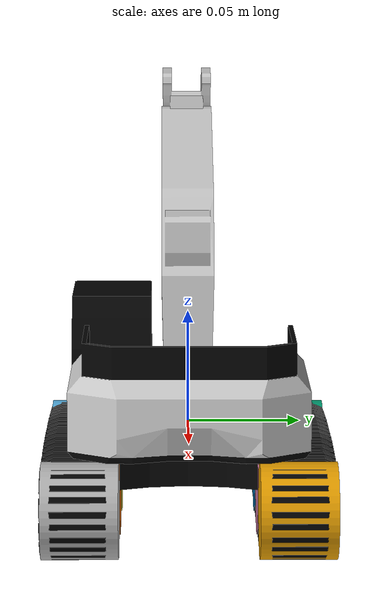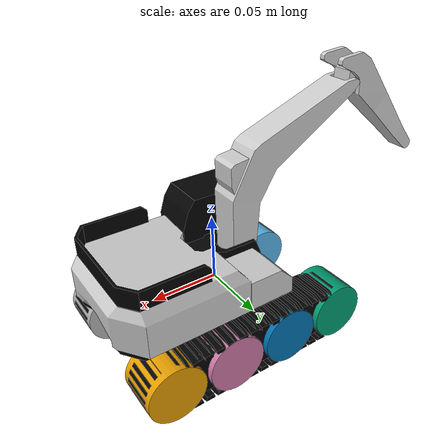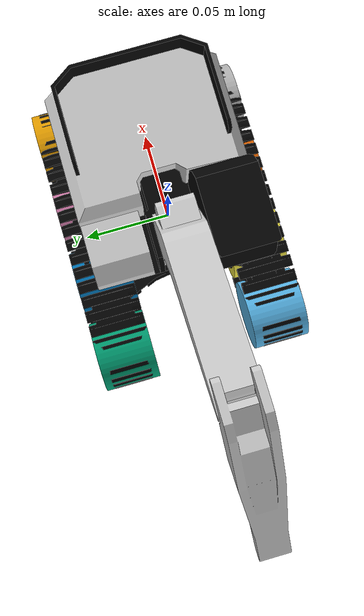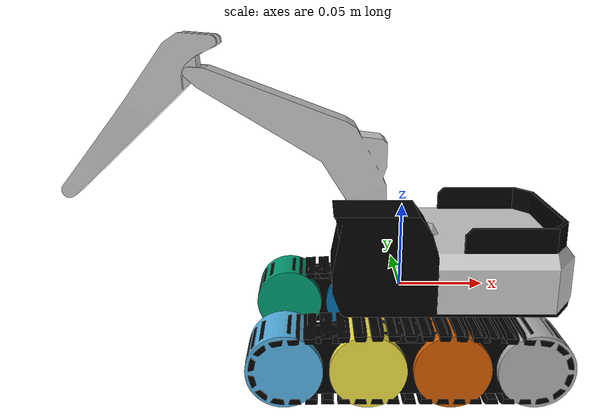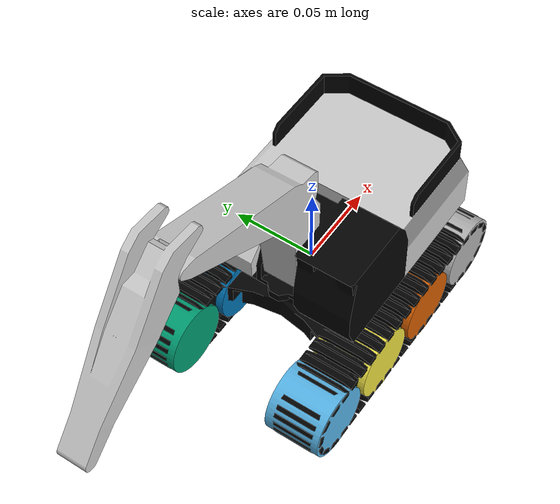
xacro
<?xml version="1.0" ?>
<robot name="pico-excavator" xmlns:xacro="http://www.ros.org/wiki/xacro">

<xacro:include filename="$(find pico-excavator)/robot-urdf/materials.xacro" />
<xacro:include filename="tracks.xacro" />
<xacro:include filename="arm.xacro" />

<link name="base_link">
</link>

<link name="main">
  <inertial>
    <origin xyz="0.03 0.0 0.018" rpy="0 0 0"/>
    <mass value="0.290"/>
    <inertia ixx="0.00025" iyy="0.0003" izz="0.0005" iyz="0.0" ixy="0.0" ixz="0.0"/>
  </inertial>
  <visual>
    <origin xyz="0 0 0" rpy="0 0 0"/>
    <geometry>
      <mesh filename="file://$(find pico-excavator)/robot-urdf/meshes/ExcavatorURDF_Main.dae" scale="1.0 1.0 1.0"/>
    </geometry>
  </visual>
  <collision>
    <origin xyz="0 0 0" rpy="0 0 0"/>
    <geometry>
      <mesh filename="file://$(find pico-excavator)/robot-urdf/meshes/ExcavatorURDF_Main.stl" scale="1.0 1.0 1.0"/>
    </geometry>
  </collision>
</link>

<joint name="main_to_base_link" type="fixed">
  <origin xyz="0.0 0.0 0.0" rpy="0 0 0"/>
  <parent link="base_link"/>
  <child link="main"/>
  <axis xyz="0.0 -1.0 0.0"/>
</joint>

</robot>

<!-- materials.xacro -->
<robot name="pico_excavator" xmlns:xacro="http://www.ros.org/wiki/xacro" >

<material name="silver">
  <color rgba="0.700 0.700 0.700 1.000"/>
</material>
<material name="black">
  <color rgba="0.100 0.100 0.100 1.000"/>
</material>
<material name="dk_green">
  <color rgba="0.050 0.500 0.090 1.000"/>
</material>

</robot>

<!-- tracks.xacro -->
<robot name="pico-excavator" xmlns:xacro="http://www.ros.org/wiki/xacro">

<link name="track_base">
  <inertial>
    <origin xyz="0.0 0.0 -0.025" rpy="0 0 0"/>
    <mass value="0.120"/>
    <inertia ixx="1.8e-4" iyy="2.2e-4" izz="3.6e-4" iyz="0.0" ixy="0.0" ixz="0.0"/>
  </inertial>
  <visual>
    <origin xyz="0.0 0.0 0.0" rpy="0 0 0"/>
    <geometry>
      <mesh filename="file://$(find pico-excavator)/robot-urdf/meshes/ExcavatorURDF_Track-Main.dae" scale="1.0 1.0 1.0"/>
    </geometry>
  </visual>
  <collision>
    <origin xyz="0.0 0.0 0.0" rpy="0 0 0"/>
    <geometry>
      <mesh filename="file://$(find pico-excavator)/robot-urdf/meshes/ExcavatorURDF_Track-Main.stl" scale="1.0 1.0 1.0"/>
    </geometry>
  </collision>
</link>

<link name="wheel_left_1">
  <inertial>
    <origin xyz="0.0 0.0 0.0" rpy="0 0 0"/>
    <mass value="0.036"/>
    <inertia ixx="1.0e-5" iyy="1.0e-5" izz="1.0e-5" iyz="0.0" ixy="0.0" ixz="0.0"/>
  </inertial>
  <visual>
    <origin xyz="0.0 0.0 0.0" rpy="0 0 0"/>
    <geometry>
      <mesh filename="file://$(find pico-excavator)/robot-urdf/meshes/ExcavatorURDF_Trackwheel.dae" scale="1.0 1.0 1.0"/>
    </geometry>
  </visual>
  <collision>
    <origin xyz="0.0 0.0 0.0" rpy="0 0 0"/>
    <geometry>
      <mesh filename="file://$(find pico-excavator)/robot-urdf/meshes/ExcavatorURDF_Track-Wheel.stl" scale="1.0 1.0 1.0"/>
    </geometry>
  </collision>
</link>

<link name="wheel_right_1">
  <inertial>
    <origin xyz="0.0 0.0 0.0" rpy="0 0 0"/>
    <mass value="0.036"/>
    <inertia ixx="1.0e-5" iyy="1.0e-5" izz="1.0e-5" iyz="0.0" ixy="0.0" ixz="0.0"/>
  </inertial>
  <visual>
    <origin xyz="0.0 0.0 0.0" rpy="0 0 0"/>
    <geometry>
      <mesh filename="file://$(find pico-excavator)/robot-urdf/meshes/ExcavatorURDF_Trackwheel.dae" scale="1.0 1.0 1.0"/>
    </geometry>
  </visual>
  <collision>
    <origin xyz="0.0 0.0 0.0" rpy="0 0 0"/>
    <geometry>
      <mesh filename="file://$(find pico-excavator)/robot-urdf/meshes/ExcavatorURDF_Track-Wheel.stl" scale="1.0 1.0 1.0"/>
    </geometry>
  </collision>
</link>

<link name="wheel_left_2">
  <inertial>
    <origin xyz="0.0 0.0 0.0" rpy="0 0 0"/>
    <mass value="0.036"/>
    <inertia ixx="1.0e-5" iyy="1.0e-5" izz="1.0e-5" iyz="0.0" ixy="0.0" ixz="0.0"/>
  </inertial>
  <visual>
    <origin xyz="0.0 0.0 0.0" rpy="0 0 0"/>
    <geometry>
      <mesh filename="file://$(find pico-excavator)/robot-urdf/meshes/ExcavatorURDF_Trackwheel.dae" scale="1.0 1.0 1.0"/>
    </geometry>
  </visual>
  <collision>
    <origin xyz="0.0 0.0 0.0" rpy="0 0 0"/>
    <geometry>
      <mesh filename="file://$(find pico-excavator)/robot-urdf/meshes/ExcavatorURDF_Track-Wheel.stl" scale="1.0 1.0 1.0"/>
    </geometry>
  </collision>
</link>

<link name="wheel_right_2">
  <inertial>
    <origin xyz="0.0 0.0 0.0" rpy="0 0 0"/>
    <mass value="0.036"/>
    <inertia ixx="1.0e-5" iyy="1.0e-5" izz="1.0e-5" iyz="0.0" ixy="0.0" ixz="0.0"/>
  </inertial>
  <visual>
    <origin xyz="0.0 0.0 0.0" rpy="0 0 0"/>
    <geometry>
      <mesh filename="file://$(find pico-excavator)/robot-urdf/meshes/ExcavatorURDF_Trackwheel.dae" scale="1.0 1.0 1.0"/>
    </geometry>
  </visual>
  <collision>
    <origin xyz="0.0 0.0 0.0" rpy="0 0 0"/>
    <geometry>
      <mesh filename="file://$(find pico-excavator)/robot-urdf/meshes/ExcavatorURDF_Track-Wheel.stl" scale="1.0 1.0 1.0"/>
    </geometry>
  </collision>
</link>

<link name="wheel_left_3">
  <inertial>
    <origin xyz="0.0 0.0 0.0" rpy="0 0 0"/>
    <mass value="0.036"/>
    <inertia ixx="1.0e-5" iyy="1.0e-5" izz="1.0e-5" iyz="0.0" ixy="0.0" ixz="0.0"/>
  </inertial>
  <visual>
    <origin xyz="0.0 0.0 0.0" rpy="0 0 0"/>
    <geometry>
      <mesh filename="file://$(find pico-excavator)/robot-urdf/meshes/ExcavatorURDF_Trackwheel.dae" scale="1.0 1.0 1.0"/>
    </geometry>
  </visual>
  <collision>
    <origin xyz="0.0 0.0 0.0" rpy="0 0 0"/>
    <geometry>
      <mesh filename="file://$(find pico-excavator)/robot-urdf/meshes/ExcavatorURDF_Track-Wheel.stl" scale="1.0 1.0 1.0"/>
    </geometry>
  </collision>
</link>

<link name="wheel_right_3">
  <inertial>
    <origin xyz="0.0 0.0 0.0" rpy="0 0 0"/>
    <mass value="0.036"/>
    <inertia ixx="1.0e-5" iyy="1.0e-5" izz="1.0e-5" iyz="0.0" ixy="0.0" ixz="0.0"/>
  </inertial>
  <visual>
    <origin xyz="0.0 0.0 0.0" rpy="0 0 0"/>
    <geometry>
      <mesh filename="file://$(find pico-excavator)/robot-urdf/meshes/ExcavatorURDF_Trackwheel.dae" scale="1.0 1.0 1.0"/>
    </geometry>
  </visual>
  <collision>
    <origin xyz="0.0 0.0 0.0" rpy="0 0 0"/>
    <geometry>
      <mesh filename="file://$(find pico-excavator)/robot-urdf/meshes/ExcavatorURDF_Track-Wheel.stl" scale="1.0 1.0 1.0"/>
    </geometry>
  </collision>
</link>

<link name="wheel_left_4">
  <inertial>
    <origin xyz="0.0 0.0 0.0" rpy="0 0 0"/>
    <mass value="0.036"/>
    <inertia ixx="1.0e-5" iyy="1.0e-5" izz="1.0e-5" iyz="0.0" ixy="0.0" ixz="0.0"/>
  </inertial>
  <visual>
    <origin xyz="0.0 0.0 0.0" rpy="0 0 0"/>
    <geometry>
      <mesh filename="file://$(find pico-excavator)/robot-urdf/meshes/ExcavatorURDF_Trackwheel.dae" scale="1.0 1.0 1.0"/>
    </geometry>
  </visual>
  <collision>
    <origin xyz="0.0 0.0 0.0" rpy="0 0 0"/>
    <geometry>
      <mesh filename="file://$(find pico-excavator)/robot-urdf/meshes/ExcavatorURDF_Track-Wheel.stl" scale="1.0 1.0 1.0"/>
    </geometry>
  </collision>
</link>

<link name="wheel_right_4">
  <inertial>
    <origin xyz="0.0 0.0 0.0" rpy="0 0 0"/>
    <mass value="0.036"/>
    <inertia ixx="1.0e-5" iyy="1.0e-5" izz="1.0e-5" iyz="0.0" ixy="0.0" ixz="0.0"/>
  </inertial>
  <visual>
    <origin xyz="0.0 0.0 0.0" rpy="0 0 0"/>
    <geometry>
      <mesh filename="file://$(find pico-excavator)/robot-urdf/meshes/ExcavatorURDF_Trackwheel.dae" scale="1.0 1.0 1.0"/>
    </geometry>
  </visual>
  <collision>
    <origin xyz="0.0 0.0 0.0" rpy="0 0 0"/>
    <geometry>
      <mesh filename="file://$(find pico-excavator)/robot-urdf/meshes/ExcavatorURDF_Track-Wheel.stl" scale="1.0 1.0 1.0"/>
    </geometry>
  </collision>
</link>

<!-- //////track joints -->
<joint name="track_main_to_base_link" type="revolute">
  <origin xyz="0.0 0.0 0.0" rpy="0 0 0"/>
  <parent link="base_link"/>
  <child link="track_base"/>
  <axis xyz="0.0 0.0 1.0"/>
  <limit effort="1000" velocity="2.0" lower="-6.28" upper="6.28" />
</joint>

<joint name="wheel_left_1_to_track_base" type="continuous">
  <origin xyz="-0.068204 -0.046753 -0.025528" rpy="0 0 0"/>
  <parent link="track_base"/>
  <child link="wheel_left_1"/>
  <axis xyz="0.0 1.0 0.0"/>
</joint>

<joint name="wheel_right_1_to_track_base" type="continuous">
  <origin xyz="-0.068204  0.047027 -0.025528" rpy="0 0 0"/>
  <parent link="track_base"/>
  <child link="wheel_right_1"/>
  <axis xyz="0.0 -1.0 0.0"/>
</joint>

<joint name="wheel_left_2_to_track_base" type="continuous">
  <origin xyz="-0.022899 -0.046753 -0.025528" rpy="0 0 0"/>
  <parent link="track_base"/>
  <child link="wheel_left_2"/>
  <axis xyz="0.0 1.0 0.0"/>
</joint>

<joint name="wheel_right_2_to_track_base" type="continuous">
  <origin xyz="-0.022899  0.047027 -0.025528" rpy="0 0 0"/>
  <parent link="track_base"/>
  <child link="wheel_right_2"/>
  <axis xyz="0.0 -1.0 0.0"/>
</joint>

<joint name="wheel_left_3_to_track_base" type="continuous">
  <origin xyz="0.022406 -0.046753 -0.025528" rpy="0 0 0"/>
  <parent link="track_base"/>
  <child link="wheel_left_3"/>
  <axis xyz="0.0 1.0 0.0"/>
</joint>

<joint name="wheel_right_3_to_track_base" type="continuous">
  <origin xyz="0.022406  0.047027 -0.025528" rpy="0 0 0"/>
  <parent link="track_base"/>
  <child link="wheel_right_3"/>
  <axis xyz="0.0 -1.0 0.0"/>
</joint>

<joint name="wheel_left_4_to_track_base" type="continuous">
  <origin xyz="0.067711 -0.046753 -0.025528" rpy="0 0 0"/>
  <parent link="track_base"/>
  <child link="wheel_left_4"/>
  <axis xyz="0.0 1.0 0.0"/>
</joint>

<joint name="wheel_right_4_to_track_base" type="continuous">
  <origin xyz="0.067711  0.047027 -0.025528" rpy="0 0 0"/>
  <parent link="track_base"/>
  <child link="wheel_right_4"/>
  <axis xyz="0.0 -1.0 0.0"/>
</joint>

</robot>

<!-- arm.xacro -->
<robot name="pico-excavator" xmlns:xacro="http://www.ros.org/wiki/xacro">

<link name="arm_boom">
  <inertial>
    <origin xyz="-0.024409 -0.0068 0.062362" rpy="0 0 0"/>
    <mass value="0.052"/>
    <inertia ixx="4.5e-5" iyy="8e-5" izz="4.5e-5" iyz="0.0" ixy="0.0" ixz="3.4e-5"/>
  </inertial>
  <visual>
    <origin xyz="0.0 0.0 0.0" rpy="0 0 0"/>
    <geometry>
      <mesh filename="file://$(find pico-excavator)/robot-urdf/meshes/ExcavatorURDF_Arm-MainBoom.dae" scale="1.0 1.0 1.0"/>
    </geometry>
  </visual>
  <collision>
    <origin xyz="0.0 0.0 0.0" rpy="0 0 0"/>
    <geometry>
      <mesh filename="file://$(find pico-excavator)/robot-urdf/meshes/ExcavatorURDF_Arm-Boom.stl" scale="1.0 1.0 1.0"/>
    </geometry>
  </collision>
</link>

<link name="arm_dipper">
  <inertial>
    <origin xyz="-0.030025 -0.000006 -0.021942" rpy="0 0 0"/>
    <mass value="0.043"/>
    <inertia ixx="3.2e-5" iyy="6.7e-5" izz="3.8e-5" iyz="0.0" ixy="0.0" ixz="-3.1e-5"/>
  </inertial>
  <visual>
    <origin xyz="0.0 0.0 0.0" rpy="0 0 0"/>
    <geometry>
      <mesh filename="file://$(find pico-excavator)/robot-urdf/meshes/ExcavatorURDF_Arm-Dipper.dae" scale="1.0 1.0 1.0"/>
    </geometry>
  </visual>
  <collision>
    <origin xyz="0.0 0.0 0.0" rpy="0 0 0"/>
    <geometry>
      <mesh filename="file://$(find pico-excavator)/robot-urdf/meshes/ExcavatorURDF_Arm-Dipper.stl" scale="1.0 1.0 1.0"/>
    </geometry>
  </collision>
</link>

<!-- //////arm joints -->
<joint name="arm_boom_to_base_link" type="revolute">
  <origin xyz="-0.020551 0.006788 0.013996" rpy="0 0 0"/>
  <parent link="base_link"/>
  <child link="arm_boom"/>
  <axis xyz="0.0 1.0 0.0"/>
  <limit effort="1000" velocity="2.0" lower="-0.6" upper="0.6" />
</joint>

<joint name="arm_dipper_to_arm_boom" type="revolute">
  <origin xyz="-0.099712 -0.006798 0.113438" rpy="0 0 0"/>
  <parent link="arm_boom"/>
  <child link="arm_dipper"/>
  <axis xyz="0.0 1.0 0.0"/>
  <limit effort="1000" velocity="2.0" lower="-0.6" upper="0.6" />
</joint>

</robot>
